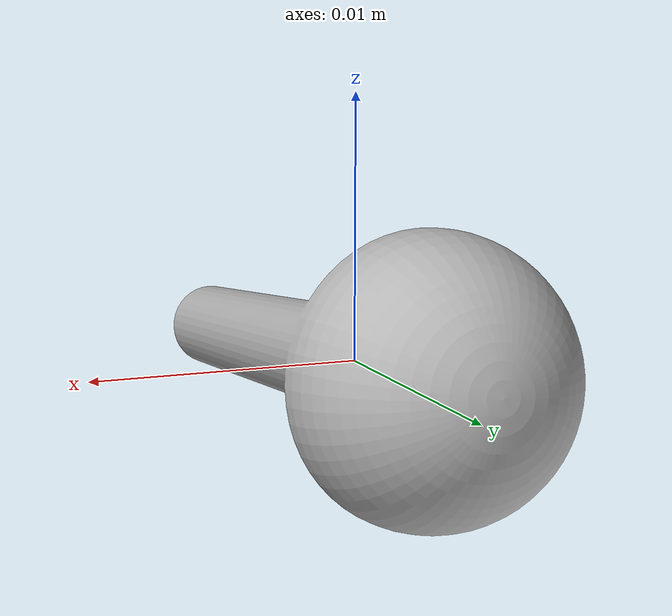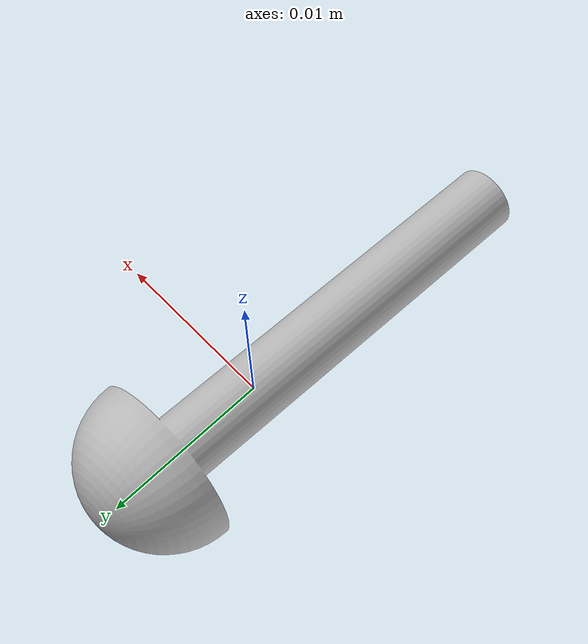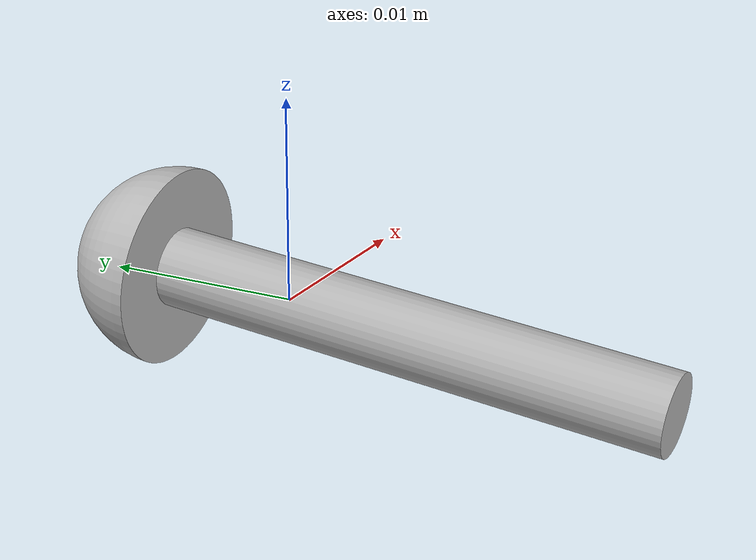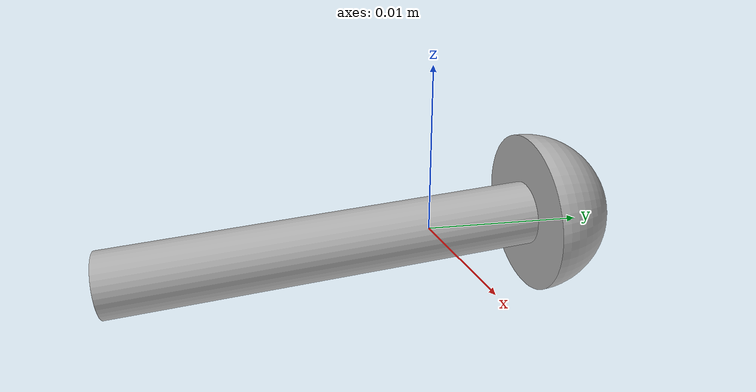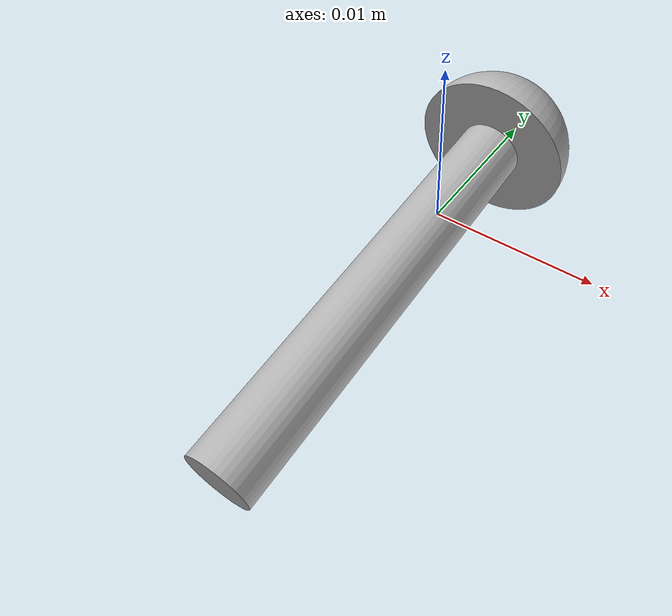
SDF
<?xml version="1.0" ?>
<sdf version="1.6">
  <model name="13)Wheel Axle">
    <static>true</static>
    <link name="link">
      <collision name="collision">
        <geometry>
          <mesh>
            <scale>0.001 0.001 0.001</scale>
            <uri>model://13)Wheel Axle/13)Wheel Axle.stl</uri>
          </mesh>
        </geometry>
      </collision>
      <visual name="visual">
        <geometry>
          <mesh>
            <scale>0.001 0.001 0.001</scale>
            <uri>model://13)Wheel Axle/13)Wheel Axle.dae</uri>
          </mesh>
        </geometry>
      </visual>
    </link>
  </model>
</sdf>
